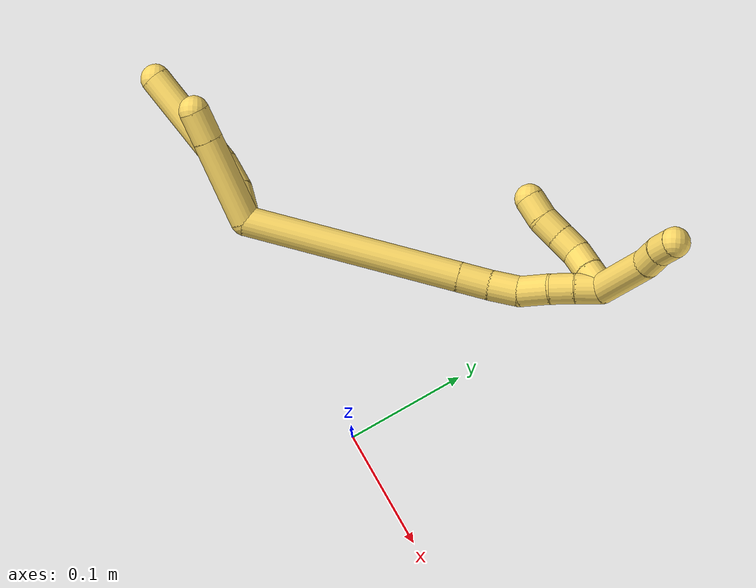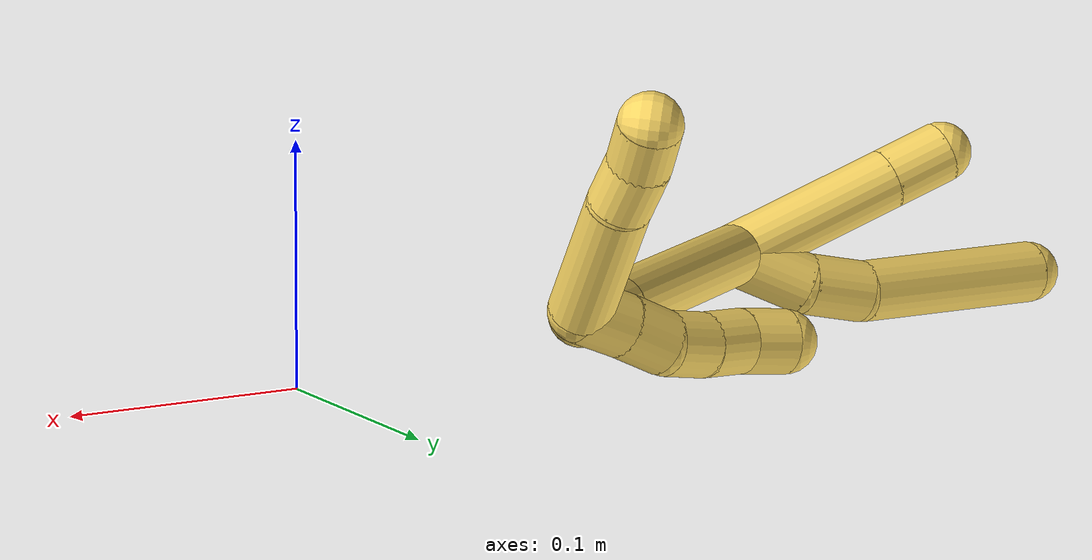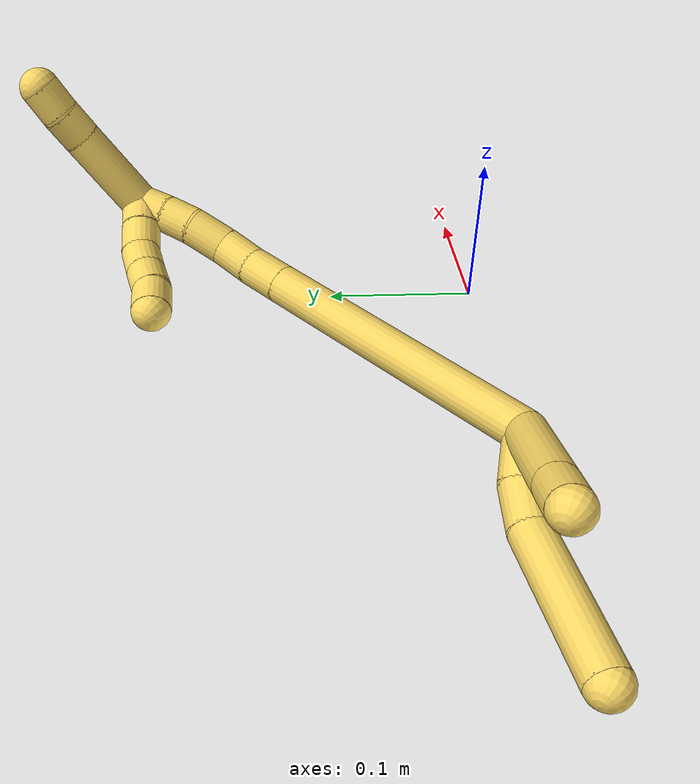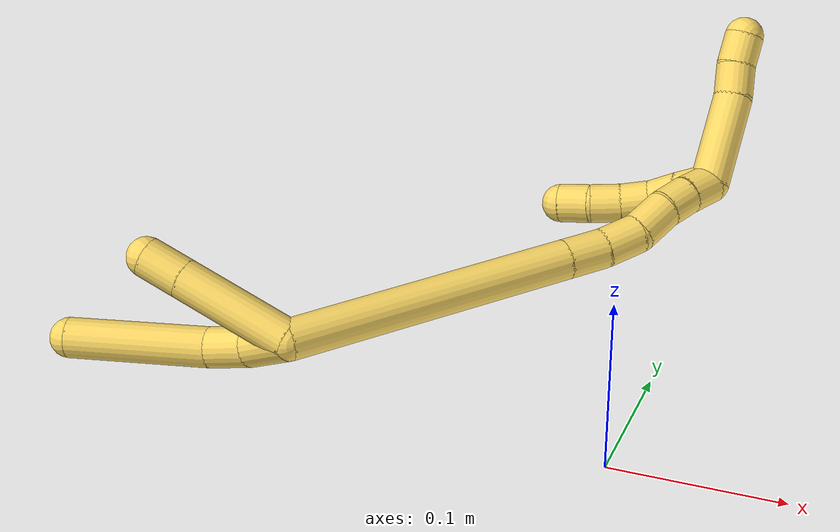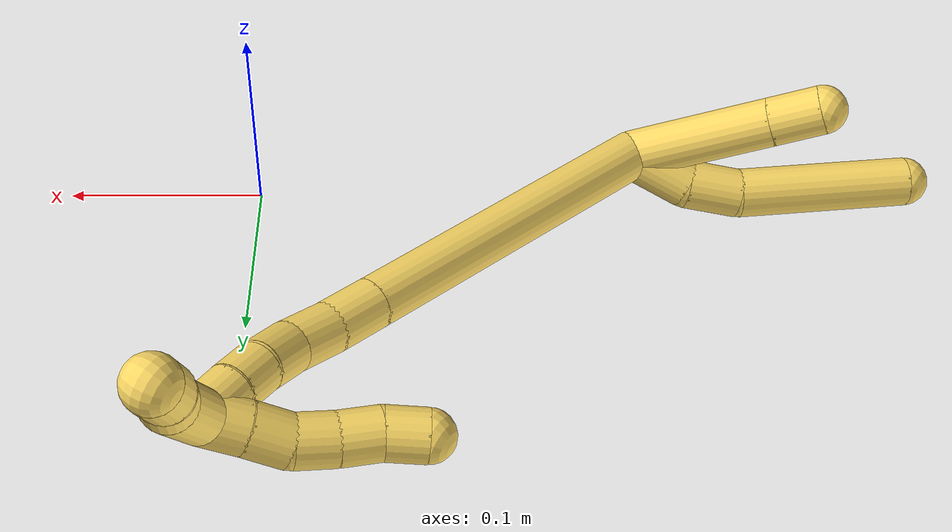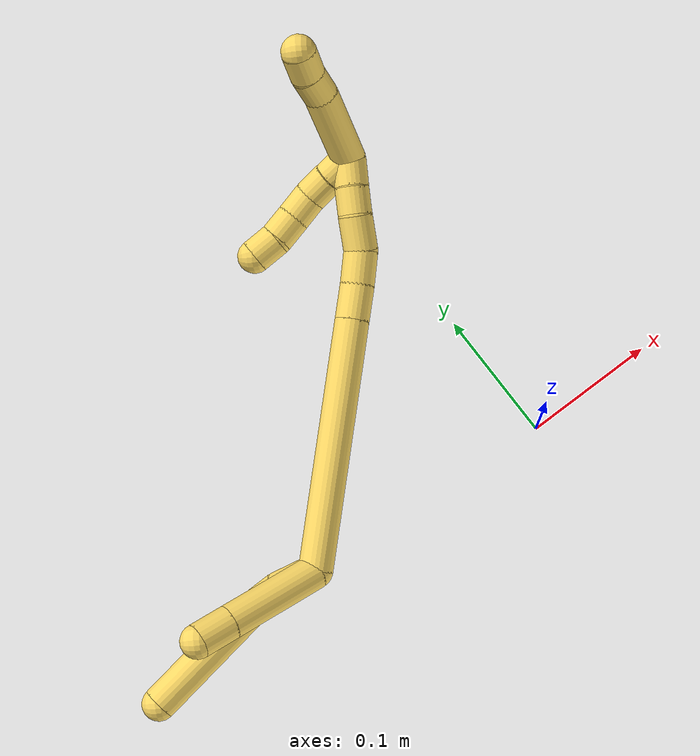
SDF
<sdf version="1.7">
 <world name="default">
  <model name="5">
   <static>0</static>
   <link name="5">
    <collision name="collision-cylinder-e_1_2_8">
     <pose>-0.006058 -0.002935 0.014625 0.198044 -0.385812 -0.038807</pose>
     <geometry><cylinder><radius>0.0125</radius><length>0.032199</length></cylinder></geometry>
     <surface>
      <friction><ode><mu>1.16</mu><mu2>1.16</mu2><slip1>0</slip1><slip2>0</slip2></ode></friction>
      <contact><ode><kp>1e+06</kp><kd>1</kd><max_vel>0</max_vel><min_depth>0.001</min_depth></ode></contact>
     </surface>
    </collision>
    <visual name="visual-cylinder-e_1_2_8">
     <pose>-0.006058 -0.002935 0.014625 0.198044 -0.385812 -0.038807</pose>
     <geometry><cylinder><radius>0.0125</radius><length>0.032199</length></cylinder></geometry>
     <material><ambient>1 0.858824 0.4 1</ambient></material>
    </visual>
    <collision name="collision-cylinder-e_2_8_9">
     <pose>-0.015675 -0.012269 0.040968 0.499831 -0.260445 -0.066832</pose>
     <geometry><cylinder><radius>0.0125</radius><length>0.027637</length></cylinder></geometry>
     <surface>
      <friction><ode><mu>1.16</mu><mu2>1.16</mu2><slip1>0</slip1><slip2>0</slip2></ode></friction>
      <contact><ode><kp>1e+06</kp><kd>1</kd><max_vel>0</max_vel><min_depth>0.001</min_depth></ode></contact>
     </surface>
    </collision>
    <visual name="visual-cylinder-e_2_8_9">
     <pose>-0.015675 -0.012269 0.040968 0.499831 -0.260445 -0.066832</pose>
     <geometry><cylinder><radius>0.0125</radius><length>0.027637</length></cylinder></geometry>
     <material><ambient>1 0.858824 0.4 1</ambient></material>
    </visual>
    <collision name="collision-cylinder-e_3_9_6">
     <pose>-0.02549 -0.047995 0.08635 0.716654 -0.139218 -0.052209</pose>
     <geometry><cylinder><radius>0.0125</radius><length>0.090164</length></cylinder></geometry>
     <surface>
      <friction><ode><mu>1.16</mu><mu2>1.16</mu2><slip1>0</slip1><slip2>0</slip2></ode></friction>
      <contact><ode><kp>1e+06</kp><kd>1</kd><max_vel>0</max_vel><min_depth>0.001</min_depth></ode></contact>
     </surface>
    </collision>
    <visual name="visual-cylinder-e_3_9_6">
     <pose>-0.02549 -0.047995 0.08635 0.716654 -0.139218 -0.052209</pose>
     <geometry><cylinder><radius>0.0125</radius><length>0.090164</length></cylinder></geometry>
     <material><ambient>1 0.858824 0.4 1</ambient></material>
    </visual>
    <collision name="collision-cylinder-e_1_2_10">
     <pose>0.010831 -0.020646 0.028347 0.629484 0.29955 0.09818</pose>
     <geometry><cylinder><radius>0.0125</radius><length>0.073406</length></cylinder></geometry>
     <surface>
      <friction><ode><mu>1.16</mu><mu2>1.16</mu2><slip1>0</slip1><slip2>0</slip2></ode></friction>
      <contact><ode><kp>1e+06</kp><kd>1</kd><max_vel>0</max_vel><min_depth>0.001</min_depth></ode></contact>
     </surface>
    </collision>
    <visual name="visual-cylinder-e_1_2_10">
     <pose>0.010831 -0.020646 0.028347 0.629484 0.29955 0.09818</pose>
     <geometry><cylinder><radius>0.0125</radius><length>0.073406</length></cylinder></geometry>
     <material><ambient>1 0.858824 0.4 1</ambient></material>
    </visual>
    <collision name="collision-cylinder-e_2_10_5">
     <pose>0.025596 -0.048792 0.066945 0.631692 0.300383 0.098825</pose>
     <geometry><cylinder><radius>0.0125</radius><length>0.026594</length></cylinder></geometry>
     <surface>
      <friction><ode><mu>1.16</mu><mu2>1.16</mu2><slip1>0</slip1><slip2>0</slip2></ode></friction>
      <contact><ode><kp>1e+06</kp><kd>1</kd><max_vel>0</max_vel><min_depth>0.001</min_depth></ode></contact>
     </surface>
    </collision>
    <visual name="visual-cylinder-e_2_10_5">
     <pose>0.025596 -0.048792 0.066945 0.631692 0.300383 0.098825</pose>
     <geometry><cylinder><radius>0.0125</radius><length>0.026594</length></cylinder></geometry>
     <material><ambient>1 0.858824 0.4 1</ambient></material>
    </visual>
    <collision name="collision-cylinder-e_1_2_11">
     <pose>0.030929 0.08295 -0.020302 -1.81083 0.347483 -0.440053</pose>
     <geometry><cylinder><radius>0.0125</radius><length>0.181653</length></cylinder></geometry>
     <surface>
      <friction><ode><mu>1.16</mu><mu2>1.16</mu2><slip1>0</slip1><slip2>0</slip2></ode></friction>
      <contact><ode><kp>1e+06</kp><kd>1</kd><max_vel>0</max_vel><min_depth>0.001</min_depth></ode></contact>
     </surface>
    </collision>
    <visual name="visual-cylinder-e_1_2_11">
     <pose>0.030929 0.08295 -0.020302 -1.81083 0.347483 -0.440053</pose>
     <geometry><cylinder><radius>0.0125</radius><length>0.181653</length></cylinder></geometry>
     <material><ambient>1 0.858824 0.4 1</ambient></material>
    </visual>
    <collision name="collision-cylinder-e_2_11_12">
     <pose>0.066366 0.1779 -0.043573 -1.81333 0.349605 -0.443816</pose>
     <geometry><cylinder><radius>0.0125</radius><length>0.026317</length></cylinder></geometry>
     <surface>
      <friction><ode><mu>1.16</mu><mu2>1.16</mu2><slip1>0</slip1><slip2>0</slip2></ode></friction>
      <contact><ode><kp>1e+06</kp><kd>1</kd><max_vel>0</max_vel><min_depth>0.001</min_depth></ode></contact>
     </surface>
    </collision>
    <visual name="visual-cylinder-e_2_11_12">
     <pose>0.066366 0.1779 -0.043573 -1.81333 0.349605 -0.443816</pose>
     <geometry><cylinder><radius>0.0125</radius><length>0.026317</length></cylinder></geometry>
     <material><ambient>1 0.858824 0.4 1</ambient></material>
    </visual>
    <collision name="collision-cylinder-e_3_12_13">
     <pose>0.076568 0.200733 -0.049107 -1.80334 0.472909 -0.591516</pose>
     <geometry><cylinder><radius>0.0125</radius><length>0.025009</length></cylinder></geometry>
     <surface>
      <friction><ode><mu>1.16</mu><mu2>1.16</mu2><slip1>0</slip1><slip2>0</slip2></ode></friction>
      <contact><ode><kp>1e+06</kp><kd>1</kd><max_vel>0</max_vel><min_depth>0.001</min_depth></ode></contact>
     </surface>
    </collision>
    <visual name="visual-cylinder-e_3_12_13">
     <pose>0.076568 0.200733 -0.049107 -1.80334 0.472909 -0.591516</pose>
     <geometry><cylinder><radius>0.0125</radius><length>0.025009</length></cylinder></geometry>
     <material><ambient>1 0.858824 0.4 1</ambient></material>
    </visual>
    <collision name="collision-cylinder-e_4_13_14">
     <pose>0.090306 0.221678 -0.05119 -1.52312 0.671294 -0.642178</pose>
     <geometry><cylinder><radius>0.0125</radius><length>0.02586</length></cylinder></geometry>
     <surface>
      <friction><ode><mu>1.16</mu><mu2>1.16</mu2><slip1>0</slip1><slip2>0</slip2></ode></friction>
      <contact><ode><kp>1e+06</kp><kd>1</kd><max_vel>0</max_vel><min_depth>0.001</min_depth></ode></contact>
     </surface>
    </collision>
    <visual name="visual-cylinder-e_4_13_14">
     <pose>0.090306 0.221678 -0.05119 -1.52312 0.671294 -0.642178</pose>
     <geometry><cylinder><radius>0.0125</radius><length>0.02586</length></cylinder></geometry>
     <material><ambient>1 0.858824 0.4 1</ambient></material>
    </visual>
    <collision name="collision-cylinder-e_5_14_15">
     <pose>0.10314 0.240577 -0.050479 -1.54471 0.49908 -0.486737</pose>
     <geometry><cylinder><radius>0.0125</radius><length>0.020019</length></cylinder></geometry>
     <surface>
      <friction><ode><mu>1.16</mu><mu2>1.16</mu2><slip1>0</slip1><slip2>0</slip2></ode></friction>
      <contact><ode><kp>1e+06</kp><kd>1</kd><max_vel>0</max_vel><min_depth>0.001</min_depth></ode></contact>
     </surface>
    </collision>
    <visual name="visual-cylinder-e_5_14_15">
     <pose>0.10314 0.240577 -0.050479 -1.54471 0.49908 -0.486737</pose>
     <geometry><cylinder><radius>0.0125</radius><length>0.020019</length></cylinder></geometry>
     <material><ambient>1 0.858824 0.4 1</ambient></material>
    </visual>
    <collision name="collision-cylinder-e_6_15_1">
     <pose>0.112184 0.259039 -0.050118 -1.55718 0.41412 -0.408674</pose>
     <geometry><cylinder><radius>0.0125</radius><length>0.021142</length></cylinder></geometry>
     <surface>
      <friction><ode><mu>1.16</mu><mu2>1.16</mu2><slip1>0</slip1><slip2>0</slip2></ode></friction>
      <contact><ode><kp>1e+06</kp><kd>1</kd><max_vel>0</max_vel><min_depth>0.001</min_depth></ode></contact>
     </surface>
    </collision>
    <visual name="visual-cylinder-e_6_15_1">
     <pose>0.112184 0.259039 -0.050118 -1.55718 0.41412 -0.408674</pose>
     <geometry><cylinder><radius>0.0125</radius><length>0.021142</length></cylinder></geometry>
     <material><ambient>1 0.858824 0.4 1</ambient></material>
    </visual>
    <collision name="collision-cylinder-e_1_1_16">
     <pose>0.112146 0.264562 -0.041966 0.477932 -0.443582 -0.109763</pose>
     <geometry><cylinder><radius>0.0125</radius><length>0.02</length></cylinder></geometry>
     <surface>
      <friction><ode><mu>1.16</mu><mu2>1.16</mu2><slip1>0</slip1><slip2>0</slip2></ode></friction>
      <contact><ode><kp>1e+06</kp><kd>1</kd><max_vel>0</max_vel><min_depth>0.001</min_depth></ode></contact>
     </surface>
    </collision>
    <visual name="visual-cylinder-e_1_1_16">
     <pose>0.112146 0.264562 -0.041966 0.477932 -0.443582 -0.109763</pose>
     <geometry><cylinder><radius>0.0125</radius><length>0.02</length></cylinder></geometry>
     <material><ambient>1 0.858824 0.4 1</ambient></material>
    </visual>
    <collision name="collision-cylinder-e_2_16_17">
     <pose>0.103136 0.256557 -0.026013 0.451837 -0.491313 -0.115125</pose>
     <geometry><cylinder><radius>0.0125</radius><length>0.02</length></cylinder></geometry>
     <surface>
      <friction><ode><mu>1.16</mu><mu2>1.16</mu2><slip1>0</slip1><slip2>0</slip2></ode></friction>
      <contact><ode><kp>1e+06</kp><kd>1</kd><max_vel>0</max_vel><min_depth>0.001</min_depth></ode></contact>
     </surface>
    </collision>
    <visual name="visual-cylinder-e_2_16_17">
     <pose>0.103136 0.256557 -0.026013 0.451837 -0.491313 -0.115125</pose>
     <geometry><cylinder><radius>0.0125</radius><length>0.02</length></cylinder></geometry>
     <material><ambient>1 0.858824 0.4 1</ambient></material>
    </visual>
    <collision name="collision-cylinder-e_3_17_18">
     <pose>0.095446 0.246181 -0.011112 0.752642 -0.301819 -0.120034</pose>
     <geometry><cylinder><radius>0.0125</radius><length>0.02</length></cylinder></geometry>
     <surface>
      <friction><ode><mu>1.16</mu><mu2>1.16</mu2><slip1>0</slip1><slip2>0</slip2></ode></friction>
      <contact><ode><kp>1e+06</kp><kd>1</kd><max_vel>0</max_vel><min_depth>0.001</min_depth></ode></contact>
     </surface>
    </collision>
    <visual name="visual-cylinder-e_3_17_18">
     <pose>0.095446 0.246181 -0.011112 0.752642 -0.301819 -0.120034</pose>
     <geometry><cylinder><radius>0.0125</radius><length>0.02</length></cylinder></geometry>
     <material><ambient>1 0.858824 0.4 1</ambient></material>
    </visual>
    <collision name="collision-cylinder-e_4_18_19">
     <pose>0.090479 0.232634 0.002694 0.798598 -0.200789 -0.084961</pose>
     <geometry><cylinder><radius>0.0125</radius><length>0.02</length></cylinder></geometry>
     <surface>
      <friction><ode><mu>1.16</mu><mu2>1.16</mu2><slip1>0</slip1><slip2>0</slip2></ode></friction>
      <contact><ode><kp>1e+06</kp><kd>1</kd><max_vel>0</max_vel><min_depth>0.001</min_depth></ode></contact>
     </surface>
    </collision>
    <visual name="visual-cylinder-e_4_18_19">
     <pose>0.090479 0.232634 0.002694 0.798598 -0.200789 -0.084961</pose>
     <geometry><cylinder><radius>0.0125</radius><length>0.02</length></cylinder></geometry>
     <material><ambient>1 0.858824 0.4 1</ambient></material>
    </visual>
    <collision name="collision-cylinder-e_5_19_4">
     <pose>0.086669 0.220287 0.017797 0.572479 -0.182582 -0.053875</pose>
     <geometry><cylinder><radius>0.0125</radius><length>0.02</length></cylinder></geometry>
     <surface>
      <friction><ode><mu>1.16</mu><mu2>1.16</mu2><slip1>0</slip1><slip2>0</slip2></ode></friction>
      <contact><ode><kp>1e+06</kp><kd>1</kd><max_vel>0</max_vel><min_depth>0.001</min_depth></ode></contact>
     </surface>
    </collision>
    <visual name="visual-cylinder-e_5_19_4">
     <pose>0.086669 0.220287 0.017797 0.572479 -0.182582 -0.053875</pose>
     <geometry><cylinder><radius>0.0125</radius><length>0.02</length></cylinder></geometry>
     <material><ambient>1 0.858824 0.4 1</ambient></material>
    </visual>
    <collision name="collision-cylinder-e_1_1_20">
     <pose>0.144176 0.277265 -0.045049 -1.04713 1.22886 -0.773583</pose>
     <geometry><cylinder><radius>0.0125</radius><length>0.058886</length></cylinder></geometry>
     <surface>
      <friction><ode><mu>1.16</mu><mu2>1.16</mu2><slip1>0</slip1><slip2>0</slip2></ode></friction>
      <contact><ode><kp>1e+06</kp><kd>1</kd><max_vel>0</max_vel><min_depth>0.001</min_depth></ode></contact>
     </surface>
    </collision>
    <visual name="visual-cylinder-e_1_1_20">
     <pose>0.144176 0.277265 -0.045049 -1.04713 1.22886 -0.773583</pose>
     <geometry><cylinder><radius>0.0125</radius><length>0.058886</length></cylinder></geometry>
     <material><ambient>1 0.858824 0.4 1</ambient></material>
    </visual>
    <collision name="collision-cylinder-e_2_20_21">
     <pose>0.181926 0.287354 -0.037373 -0.511789 1.26673 -0.379594</pose>
     <geometry><cylinder><radius>0.0125</radius><length>0.020985</length></cylinder></geometry>
     <surface>
      <friction><ode><mu>1.16</mu><mu2>1.16</mu2><slip1>0</slip1><slip2>0</slip2></ode></friction>
      <contact><ode><kp>1e+06</kp><kd>1</kd><max_vel>0</max_vel><min_depth>0.001</min_depth></ode></contact>
     </surface>
    </collision>
    <visual name="visual-cylinder-e_2_20_21">
     <pose>0.181926 0.287354 -0.037373 -0.511789 1.26673 -0.379594</pose>
     <geometry><cylinder><radius>0.0125</radius><length>0.020985</length></cylinder></geometry>
     <material><ambient>1 0.858824 0.4 1</ambient></material>
    </visual>
    <collision name="collision-cylinder-e_3_21_3">
     <pose>0.201615 0.291365 -0.033404 -1.10929 1.29286 -0.874578</pose>
     <geometry><cylinder><radius>0.0125</radius><length>0.020129</length></cylinder></geometry>
     <surface>
      <friction><ode><mu>1.16</mu><mu2>1.16</mu2><slip1>0</slip1><slip2>0</slip2></ode></friction>
      <contact><ode><kp>1e+06</kp><kd>1</kd><max_vel>0</max_vel><min_depth>0.001</min_depth></ode></contact>
     </surface>
    </collision>
    <visual name="visual-cylinder-e_3_21_3">
     <pose>0.201615 0.291365 -0.033404 -1.10929 1.29286 -0.874578</pose>
     <geometry><cylinder><radius>0.0125</radius><length>0.020129</length></cylinder></geometry>
     <material><ambient>1 0.858824 0.4 1</ambient></material>
    </visual>
    <collision name="collision-sphere-3">
     <pose>0.211293 0.293837 -0.032175 0 -0 0</pose>
     <geometry><sphere><radius>0.0125</radius></sphere></geometry>
     <surface>
      <friction><ode><mu>1.16</mu><mu2>1.16</mu2><slip1>0</slip1><slip2>0</slip2></ode></friction>
      <contact><ode><kp>1e+06</kp><kd>1</kd><max_vel>0</max_vel><min_depth>0.001</min_depth></ode></contact>
     </surface>
    </collision>
    <visual name="visual-sphere-3">
     <pose>0.211293 0.293837 -0.032175 0 -0 0</pose>
     <geometry><sphere><radius>0.0125</radius></sphere></geometry>
     <material><ambient>1 0.858824 0.4 1</ambient></material>
    </visual>
    <collision name="collision-sphere-21">
     <pose>0.191937 0.288892 -0.034634 0 -0 0</pose>
     <geometry><sphere><radius>0.0125</radius></sphere></geometry>
     <surface>
      <friction><ode><mu>1.16</mu><mu2>1.16</mu2><slip1>0</slip1><slip2>0</slip2></ode></friction>
      <contact><ode><kp>1e+06</kp><kd>1</kd><max_vel>0</max_vel><min_depth>0.001</min_depth></ode></contact>
     </surface>
    </collision>
    <visual name="visual-sphere-21">
     <pose>0.191937 0.288892 -0.034634 0 -0 0</pose>
     <geometry><sphere><radius>0.0125</radius></sphere></geometry>
     <material><ambient>1 0.858824 0.4 1</ambient></material>
    </visual>
    <collision name="collision-sphere-20">
     <pose>0.171914 0.285815 -0.040112 0 -0 0</pose>
     <geometry><sphere><radius>0.0125</radius></sphere></geometry>
     <surface>
      <friction><ode><mu>1.16</mu><mu2>1.16</mu2><slip1>0</slip1><slip2>0</slip2></ode></friction>
      <contact><ode><kp>1e+06</kp><kd>1</kd><max_vel>0</max_vel><min_depth>0.001</min_depth></ode></contact>
     </surface>
    </collision>
    <visual name="visual-sphere-20">
     <pose>0.171914 0.285815 -0.040112 0 -0 0</pose>
     <geometry><sphere><radius>0.0125</radius></sphere></geometry>
     <material><ambient>1 0.858824 0.4 1</ambient></material>
    </visual>
    <collision name="collision-sphere-4">
     <pose>0.084853 0.21496 0.026063 0 -0 0</pose>
     <geometry><sphere><radius>0.0125</radius></sphere></geometry>
     <surface>
      <friction><ode><mu>1.16</mu><mu2>1.16</mu2><slip1>0</slip1><slip2>0</slip2></ode></friction>
      <contact><ode><kp>1e+06</kp><kd>1</kd><max_vel>0</max_vel><min_depth>0.001</min_depth></ode></contact>
     </surface>
    </collision>
    <visual name="visual-sphere-4">
     <pose>0.084853 0.21496 0.026063 0 -0 0</pose>
     <geometry><sphere><radius>0.0125</radius></sphere></geometry>
     <material><ambient>1 0.858824 0.4 1</ambient></material>
    </visual>
    <collision name="collision-sphere-5">
     <pose>0.02953 -0.056293 0.077195 0 -0 0</pose>
     <geometry><sphere><radius>0.0125</radius></sphere></geometry>
     <surface>
      <friction><ode><mu>1.16</mu><mu2>1.16</mu2><slip1>0</slip1><slip2>0</slip2></ode></friction>
      <contact><ode><kp>1e+06</kp><kd>1</kd><max_vel>0</max_vel><min_depth>0.001</min_depth></ode></contact>
     </surface>
    </collision>
    <visual name="visual-sphere-5">
     <pose>0.02953 -0.056293 0.077195 0 -0 0</pose>
     <geometry><sphere><radius>0.0125</radius></sphere></geometry>
     <material><ambient>1 0.858824 0.4 1</ambient></material>
    </visual>
    <collision name="collision-sphere-10">
     <pose>0.021661 -0.041292 0.056694 0 -0 0</pose>
     <geometry><sphere><radius>0.0125</radius></sphere></geometry>
     <surface>
      <friction><ode><mu>1.16</mu><mu2>1.16</mu2><slip1>0</slip1><slip2>0</slip2></ode></friction>
      <contact><ode><kp>1e+06</kp><kd>1</kd><max_vel>0</max_vel><min_depth>0.001</min_depth></ode></contact>
     </surface>
    </collision>
    <visual name="visual-sphere-10">
     <pose>0.021661 -0.041292 0.056694 0 -0 0</pose>
     <geometry><sphere><radius>0.0125</radius></sphere></geometry>
     <material><ambient>1 0.858824 0.4 1</ambient></material>
    </visual>
    <collision name="collision-sphere-6">
     <pose>-0.031746 -0.077321 0.120014 0 -0 0</pose>
     <geometry><sphere><radius>0.0125</radius></sphere></geometry>
     <surface>
      <friction><ode><mu>1.16</mu><mu2>1.16</mu2><slip1>0</slip1><slip2>0</slip2></ode></friction>
      <contact><ode><kp>1e+06</kp><kd>1</kd><max_vel>0</max_vel><min_depth>0.001</min_depth></ode></contact>
     </surface>
    </collision>
    <visual name="visual-sphere-6">
     <pose>-0.031746 -0.077321 0.120014 0 -0 0</pose>
     <geometry><sphere><radius>0.0125</radius></sphere></geometry>
     <material><ambient>1 0.858824 0.4 1</ambient></material>
    </visual>
    <collision name="collision-sphere-9">
     <pose>-0.019234 -0.018669 0.052687 0 -0 0</pose>
     <geometry><sphere><radius>0.0125</radius></sphere></geometry>
     <surface>
      <friction><ode><mu>1.16</mu><mu2>1.16</mu2><slip1>0</slip1><slip2>0</slip2></ode></friction>
      <contact><ode><kp>1e+06</kp><kd>1</kd><max_vel>0</max_vel><min_depth>0.001</min_depth></ode></contact>
     </surface>
    </collision>
    <visual name="visual-sphere-9">
     <pose>-0.019234 -0.018669 0.052687 0 -0 0</pose>
     <geometry><sphere><radius>0.0125</radius></sphere></geometry>
     <material><ambient>1 0.858824 0.4 1</ambient></material>
    </visual>
    <collision name="collision-sphere-2">
     <geometry><sphere><radius>0.0125</radius></sphere></geometry>
     <surface>
      <friction><ode><mu>1.16</mu><mu2>1.16</mu2><slip1>0</slip1><slip2>0</slip2></ode></friction>
      <contact><ode><kp>1e+06</kp><kd>1</kd><max_vel>0</max_vel><min_depth>0.001</min_depth></ode></contact>
     </surface>
    </collision>
    <visual name="visual-sphere-2">
     <geometry><sphere><radius>0.0125</radius></sphere></geometry>
     <material><ambient>1 0.858824 0.4 1</ambient></material>
    </visual>
    <collision name="collision-sphere-19">
     <pose>0.088484 0.225615 0.009531 0 -0 0</pose>
     <geometry><sphere><radius>0.0125</radius></sphere></geometry>
     <surface>
      <friction><ode><mu>1.16</mu><mu2>1.16</mu2><slip1>0</slip1><slip2>0</slip2></ode></friction>
      <contact><ode><kp>1e+06</kp><kd>1</kd><max_vel>0</max_vel><min_depth>0.001</min_depth></ode></contact>
     </surface>
    </collision>
    <visual name="visual-sphere-19">
     <pose>0.088484 0.225615 0.009531 0 -0 0</pose>
     <geometry><sphere><radius>0.0125</radius></sphere></geometry>
     <material><ambient>1 0.858824 0.4 1</ambient></material>
    </visual>
    <collision name="collision-sphere-8">
     <pose>-0.012117 -0.00587 0.029249 0 -0 0</pose>
     <geometry><sphere><radius>0.0125</radius></sphere></geometry>
     <surface>
      <friction><ode><mu>1.16</mu><mu2>1.16</mu2><slip1>0</slip1><slip2>0</slip2></ode></friction>
      <contact><ode><kp>1e+06</kp><kd>1</kd><max_vel>0</max_vel><min_depth>0.001</min_depth></ode></contact>
     </surface>
    </collision>
    <visual name="visual-sphere-8">
     <pose>-0.012117 -0.00587 0.029249 0 -0 0</pose>
     <geometry><sphere><radius>0.0125</radius></sphere></geometry>
     <material><ambient>1 0.858824 0.4 1</ambient></material>
    </visual>
    <collision name="collision-sphere-11">
     <pose>0.061859 0.1659 -0.040604 0 -0 0</pose>
     <geometry><sphere><radius>0.0125</radius></sphere></geometry>
     <surface>
      <friction><ode><mu>1.16</mu><mu2>1.16</mu2><slip1>0</slip1><slip2>0</slip2></ode></friction>
      <contact><ode><kp>1e+06</kp><kd>1</kd><max_vel>0</max_vel><min_depth>0.001</min_depth></ode></contact>
     </surface>
    </collision>
    <visual name="visual-sphere-11">
     <pose>0.061859 0.1659 -0.040604 0 -0 0</pose>
     <geometry><sphere><radius>0.0125</radius></sphere></geometry>
     <material><ambient>1 0.858824 0.4 1</ambient></material>
    </visual>
    <collision name="collision-sphere-12">
     <pose>0.070873 0.189901 -0.046542 0 -0 0</pose>
     <geometry><sphere><radius>0.0125</radius></sphere></geometry>
     <surface>
      <friction><ode><mu>1.16</mu><mu2>1.16</mu2><slip1>0</slip1><slip2>0</slip2></ode></friction>
      <contact><ode><kp>1e+06</kp><kd>1</kd><max_vel>0</max_vel><min_depth>0.001</min_depth></ode></contact>
     </surface>
    </collision>
    <visual name="visual-sphere-12">
     <pose>0.070873 0.189901 -0.046542 0 -0 0</pose>
     <geometry><sphere><radius>0.0125</radius></sphere></geometry>
     <material><ambient>1 0.858824 0.4 1</ambient></material>
    </visual>
    <collision name="collision-sphere-13">
     <pose>0.082264 0.211565 -0.051673 0 -0 0</pose>
     <geometry><sphere><radius>0.0125</radius></sphere></geometry>
     <surface>
      <friction><ode><mu>1.16</mu><mu2>1.16</mu2><slip1>0</slip1><slip2>0</slip2></ode></friction>
      <contact><ode><kp>1e+06</kp><kd>1</kd><max_vel>0</max_vel><min_depth>0.001</min_depth></ode></contact>
     </surface>
    </collision>
    <visual name="visual-sphere-13">
     <pose>0.082264 0.211565 -0.051673 0 -0 0</pose>
     <geometry><sphere><radius>0.0125</radius></sphere></geometry>
     <material><ambient>1 0.858824 0.4 1</ambient></material>
    </visual>
    <collision name="collision-sphere-14">
     <pose>0.098349 0.231791 -0.050708 0 -0 0</pose>
     <geometry><sphere><radius>0.0125</radius></sphere></geometry>
     <surface>
      <friction><ode><mu>1.16</mu><mu2>1.16</mu2><slip1>0</slip1><slip2>0</slip2></ode></friction>
      <contact><ode><kp>1e+06</kp><kd>1</kd><max_vel>0</max_vel><min_depth>0.001</min_depth></ode></contact>
     </surface>
    </collision>
    <visual name="visual-sphere-14">
     <pose>0.098349 0.231791 -0.050708 0 -0 0</pose>
     <geometry><sphere><radius>0.0125</radius></sphere></geometry>
     <material><ambient>1 0.858824 0.4 1</ambient></material>
    </visual>
    <collision name="collision-sphere-15">
     <pose>0.10793 0.249362 -0.050249 0 -0 0</pose>
     <geometry><sphere><radius>0.0125</radius></sphere></geometry>
     <surface>
      <friction><ode><mu>1.16</mu><mu2>1.16</mu2><slip1>0</slip1><slip2>0</slip2></ode></friction>
      <contact><ode><kp>1e+06</kp><kd>1</kd><max_vel>0</max_vel><min_depth>0.001</min_depth></ode></contact>
     </surface>
    </collision>
    <visual name="visual-sphere-15">
     <pose>0.10793 0.249362 -0.050249 0 -0 0</pose>
     <geometry><sphere><radius>0.0125</radius></sphere></geometry>
     <material><ambient>1 0.858824 0.4 1</ambient></material>
    </visual>
    <collision name="collision-sphere-1">
     <pose>0.116438 0.268716 -0.049986 0 -0 0</pose>
     <geometry><sphere><radius>0.0125</radius></sphere></geometry>
     <surface>
      <friction><ode><mu>1.16</mu><mu2>1.16</mu2><slip1>0</slip1><slip2>0</slip2></ode></friction>
      <contact><ode><kp>1e+06</kp><kd>1</kd><max_vel>0</max_vel><min_depth>0.001</min_depth></ode></contact>
     </surface>
    </collision>
    <visual name="visual-sphere-1">
     <pose>0.116438 0.268716 -0.049986 0 -0 0</pose>
     <geometry><sphere><radius>0.0125</radius></sphere></geometry>
     <material><ambient>1 0.858824 0.4 1</ambient></material>
    </visual>
    <collision name="collision-sphere-18">
     <pose>0.092473 0.239654 -0.004143 0 -0 0</pose>
     <geometry><sphere><radius>0.0125</radius></sphere></geometry>
     <surface>
      <friction><ode><mu>1.16</mu><mu2>1.16</mu2><slip1>0</slip1><slip2>0</slip2></ode></friction>
      <contact><ode><kp>1e+06</kp><kd>1</kd><max_vel>0</max_vel><min_depth>0.001</min_depth></ode></contact>
     </surface>
    </collision>
    <visual name="visual-sphere-18">
     <pose>0.092473 0.239654 -0.004143 0 -0 0</pose>
     <geometry><sphere><radius>0.0125</radius></sphere></geometry>
     <material><ambient>1 0.858824 0.4 1</ambient></material>
    </visual>
    <collision name="collision-sphere-16">
     <pose>0.107854 0.260407 -0.033946 0 -0 0</pose>
     <geometry><sphere><radius>0.0125</radius></sphere></geometry>
     <surface>
      <friction><ode><mu>1.16</mu><mu2>1.16</mu2><slip1>0</slip1><slip2>0</slip2></ode></friction>
      <contact><ode><kp>1e+06</kp><kd>1</kd><max_vel>0</max_vel><min_depth>0.001</min_depth></ode></contact>
     </surface>
    </collision>
    <visual name="visual-sphere-16">
     <pose>0.107854 0.260407 -0.033946 0 -0 0</pose>
     <geometry><sphere><radius>0.0125</radius></sphere></geometry>
     <material><ambient>1 0.858824 0.4 1</ambient></material>
    </visual>
    <collision name="collision-sphere-17">
     <pose>0.098418 0.252708 -0.018081 0 -0 0</pose>
     <geometry><sphere><radius>0.0125</radius></sphere></geometry>
     <surface>
      <friction><ode><mu>1.16</mu><mu2>1.16</mu2><slip1>0</slip1><slip2>0</slip2></ode></friction>
      <contact><ode><kp>1e+06</kp><kd>1</kd><max_vel>0</max_vel><min_depth>0.001</min_depth></ode></contact>
     </surface>
    </collision>
    <visual name="visual-sphere-17">
     <pose>0.098418 0.252708 -0.018081 0 -0 0</pose>
     <geometry><sphere><radius>0.0125</radius></sphere></geometry>
     <material><ambient>1 0.858824 0.4 1</ambient></material>
    </visual>
    <inertial>
     <pose>0.054299 0.114464 -0.001984 0 -0 0</pose>
     <mass>0.75</mass>
     <inertia>
      <ixx>0.000359</ixx>
      <ixy>0</ixy>
      <ixz>0</ixz>
      <iyy>-0.000127</iyy>
      <iyz>0</iyz>
      <izz>-0.000586</izz>
     </inertia>
    </inertial>
   </link>
   <pose>-0.194577 0.010241 0.035653 -1.99244 -1.25409 1.39817</pose>
  </model>
 </world>
</sdf>
